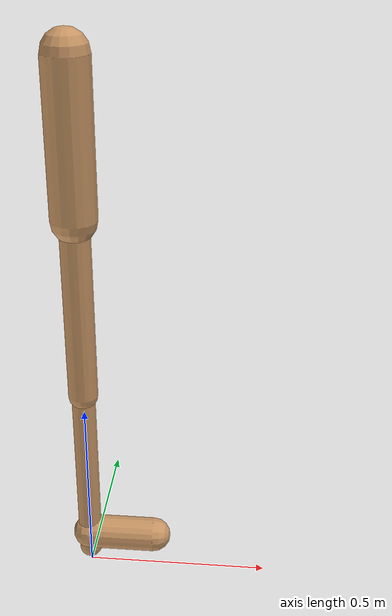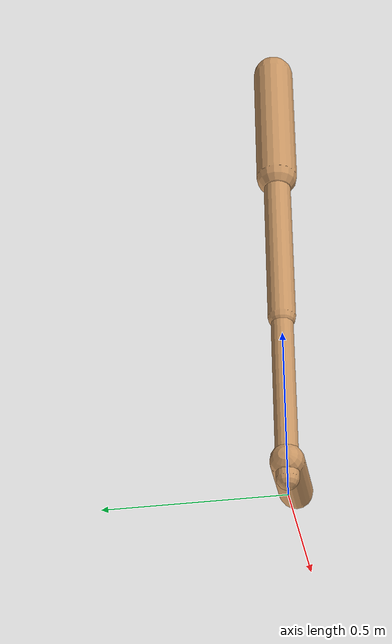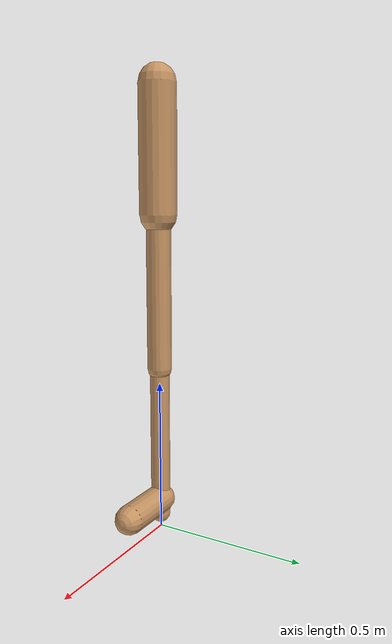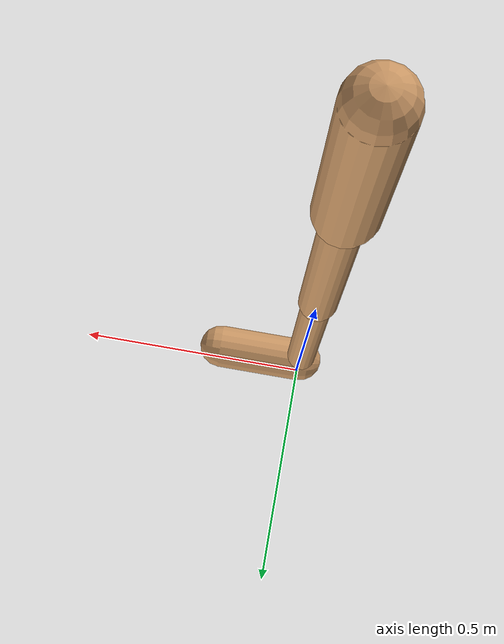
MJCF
<mujoco model="walker2d">
  <compiler angle="degree" coordinate="global" inertiafromgeom="true" />
  <default>
    <joint armature="0.01" damping=".1" limited="true" />
    <geom conaffinity="0" condim="3" contype="1" density="1000" friction="0.8 .1 .1" rgba="0.8 0.6 .4 1" />
  </default>
  <option integrator="RK4" timestep="0.002" />
  <worldbody>

    <body name="torso" pos="0 0 0.09811979706464737">
      <joint armature="0" axis="1 0 0" damping="0" limited="false" name="ignorex" pos="0 0 0" stiffness="0" type="slide" />
      <joint armature="0" axis="0 0 1" damping="0" limited="false" name="ignorez" pos="0 0 0" ref="1.25" stiffness="0" type="slide" />
      <joint armature="0" axis="0 1 0" damping="0" limited="false" name="ignorey" pos="0 0 0" stiffness="0" type="hinge" />
      <geom fromto="0 0 1.45 0 0 1.05" name="torso_geom" size="0.06008516481155856" type="capsule" />
      <body name="thigh">
        <joint axis="0 -1 0" name="thigh_joint" pos="0 0 1.05" range="-150 0" type="hinge" />
        <geom fromto="0.0 0.0 1.05 0.0 0.0 0.5535222013904302" name="thigh_geom" size="0.03968933282944568" type="capsule" />
        <body name="leg" pos="0.0 0.0 -0.0464777986095698">
          <joint axis="0 -1 0" name="leg_joint" pos="0 0 0.6" range="-150 0" type="hinge" />
          <geom fromto="0.0 0.0 0.6 0.0 0.0 0.048358001544922445" name="leg_geom" size="0.031751466263556544" type="capsule" />
          <body name="foot" pos="0.0 0.0 -0.05164199845507756">
            <joint axis="0 -1 0" name="foot_joint" pos="0 0 0.1" range="-45 45" type="hinge" />
            <geom fromto="0.0 0.0 0.1 0.18370426390864772 0.0 0.1" name="foot_geom" size="0.04726875508565719" type="capsule" />
          </body>
        </body>
      </body>

      <body name="thigh_left">
        <joint axis="0 -1 0" name="thigh_left_joint" pos="0 0 1.05" range="-150 0" type="hinge" />
        <geom fromto="0.0 0.0 1.05 0.0 0.0 0.5535222013904302" name="thigh_left_geom" rgba=".7 .3 .6 1" size="0.03968933282944568" type="capsule" />
        <body name="leg_left" pos="0.0 0.0 -0.0464777986095698">
          <joint axis="0 -1 0" name="leg_left_joint" pos="0 0 0.6" range="-150 0" type="hinge" />
          <geom fromto="0.0 0.0 0.6 0.0 0.0 0.048358001544922445" name="leg_left_geom" rgba=".7 .3 .6 1" size="0.031751466263556544" type="capsule" />
          <body name="foot_left" pos="0.0 0.0 -0.05164199845507756">
            <joint axis="0 -1 0" name="foot_left_joint" pos="0 0 0.1" range="-45 45" type="hinge" />
            <geom fromto="0.0 0.0 0.1 0.18370426390864772 0.0 0.1" name="foot_left_geom" rgba=".7 .3 .6 1" size="0.04726875508565719" type="capsule" />
          </body>
        </body>
      </body>
    </body>
  </worldbody>
  <actuator>

    <motor ctrllimited="true" ctrlrange="-1.0 1.0" gear="100" joint="thigh_joint" />
    <motor ctrllimited="true" ctrlrange="-1.0 1.0" gear="100" joint="leg_joint" />
    <motor ctrllimited="true" ctrlrange="-1.0 1.0" gear="100" joint="foot_joint" />
    <motor ctrllimited="true" ctrlrange="-1.0 1.0" gear="100" joint="thigh_left_joint" />
    <motor ctrllimited="true" ctrlrange="-1.0 1.0" gear="100" joint="leg_left_joint" />
    <motor ctrllimited="true" ctrlrange="-1.0 1.0" gear="100" joint="foot_left_joint" />

  </actuator>
</mujoco>
